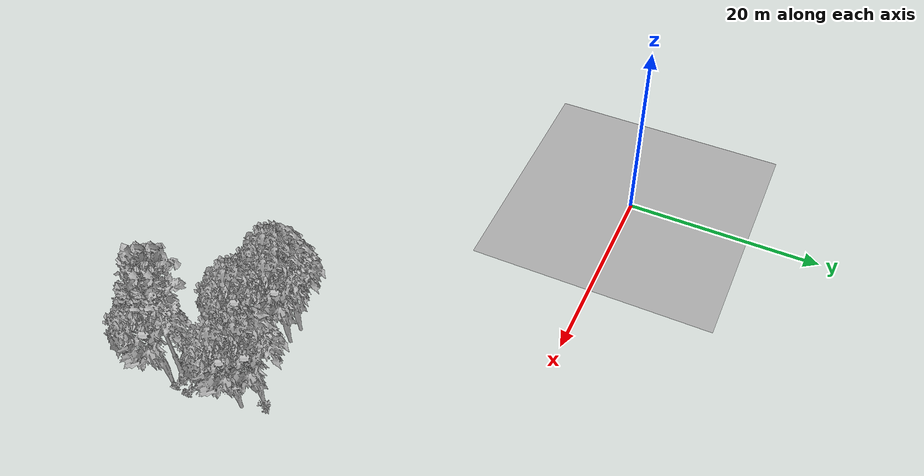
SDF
<sdf version="1.7">
 <world name="default">
  <model name="ground_plane">
   <static>1</static>
   <link name="link">
    <collision name="collision">
     <pose>-50 0 0 0 -0 0</pose>
     <geometry><plane><normal>0 0 1</normal><size>80 80</size></plane></geometry>
     <surface><contact><ode><min_depth>0.01</min_depth><max_vel>0</max_vel></ode></contact></surface>
    </collision>
    <visual name="grass">
     <cast_shadows>0</cast_shadows>
     <geometry>
      <mesh>
       <scale>0.46714285714285714 0.46714285714285714 0.1</scale>
       <uri>file://grass_plane/meshes/grass_plane.dae</uri>
      </mesh>
     </geometry>
    </visual>
   </link>
  </model>
  <model name="Tree 36">
   <static>1</static>
   <pose>37.666308855298524 -23.559179173925806 0 1.57079 -0 0</pose>
   <link name="link">
    <collision name="collision">
     <geometry><mesh><scale>3.5 5 3.5</scale><uri>model://tree_2/meshes/tree_2.obj</uri></mesh></geometry>
    </collision>
    <visual name="visual">
     <geometry><mesh><scale>3.5 5 3.5</scale><uri>model://tree_2/meshes/tree_2.obj</uri></mesh></geometry>
    </visual>
   </link>
  </model>
  <model name="Tree 43">
   <static>1</static>
   <pose>28.239215573967428 -23.323591105262437 0 1.57079 -0 0</pose>
   <link name="link">
    <collision name="collision">
     <geometry><mesh><scale>3.5 5 3.5</scale><uri>model://tree_2/meshes/tree_2.obj</uri></mesh></geometry>
    </collision>
    <visual name="visual">
     <geometry><mesh><scale>3.5 5 3.5</scale><uri>model://tree_2/meshes/tree_2.obj</uri></mesh></geometry>
    </visual>
   </link>
  </model>
  <model name="Tree 63">
   <static>1</static>
   <pose>27.386450528679518 -25.158228615375577 0 1.57079 -0 0</pose>
   <link name="link">
    <collision name="collision">
     <geometry><mesh><scale>3.5 5 3.5</scale><uri>model://tree_2/meshes/tree_2.obj</uri></mesh></geometry>
    </collision>
    <visual name="visual">
     <geometry><mesh><scale>3.5 5 3.5</scale><uri>model://tree_2/meshes/tree_2.obj</uri></mesh></geometry>
    </visual>
   </link>
  </model>
  <model name="Tree 125">
   <static>1</static>
   <pose>36.91223930541831 -30.705262825842166 0 1.57079 -0 0</pose>
   <link name="link">
    <collision name="collision">
     <geometry><mesh><scale>3.5 5 3.5</scale><uri>model://tree_9/meshes/tree_9.obj</uri></mesh></geometry>
    </collision>
    <visual name="visual">
     <geometry><mesh><scale>3.5 5 3.5</scale><uri>model://tree_9/meshes/tree_9.obj</uri></mesh></geometry>
    </visual>
   </link>
  </model>
  <model name="Tree 168">
   <static>1</static>
   <pose>36.48193099853195 -21.952247112098444 0 1.57079 -0 0</pose>
   <link name="link">
    <collision name="collision">
     <geometry><mesh><scale>3.5 5 3.5</scale><uri>model://tree_2/meshes/tree_2.obj</uri></mesh></geometry>
    </collision>
    <visual name="visual">
     <geometry><mesh><scale>3.5 5 3.5</scale><uri>model://tree_2/meshes/tree_2.obj</uri></mesh></geometry>
    </visual>
   </link>
  </model>
  <model name="Tree 338">
   <static>1</static>
   <pose>29.816859059504196 -23.475118878382688 0 1.57079 -0 0</pose>
   <link name="link">
    <collision name="collision">
     <geometry><mesh><scale>3.5 5 3.5</scale><uri>model://tree_2/meshes/tree_2.obj</uri></mesh></geometry>
    </collision>
    <visual name="visual">
     <geometry><mesh><scale>3.5 5 3.5</scale><uri>model://tree_2/meshes/tree_2.obj</uri></mesh></geometry>
    </visual>
   </link>
  </model>
  <model name="Tree 459">
   <static>1</static>
   <pose>36.405719890573806 -29.645964743357716 0 1.57079 -0 0</pose>
   <link name="link">
    <collision name="collision">
     <geometry><mesh><scale>3.5 5 3.5</scale><uri>model://tree_9/meshes/tree_9.obj</uri></mesh></geometry>
    </collision>
    <visual name="visual">
     <geometry><mesh><scale>3.5 5 3.5</scale><uri>model://tree_9/meshes/tree_9.obj</uri></mesh></geometry>
    </visual>
   </link>
  </model>
  <model name="Tree 539">
   <static>1</static>
   <pose>32.11772021168959 -25.976624155415298 0 1.57079 -0 0</pose>
   <link name="link">
    <collision name="collision">
     <geometry><mesh><scale>3.5 5 3.5</scale><uri>model://tree_2/meshes/tree_2.obj</uri></mesh></geometry>
    </collision>
    <visual name="visual">
     <geometry><mesh><scale>3.5 5 3.5</scale><uri>model://tree_2/meshes/tree_2.obj</uri></mesh></geometry>
    </visual>
   </link>
  </model>
  <model name="Tree 597">
   <static>1</static>
   <pose>37.996024297069596 -30.895406996577677 0 1.57079 -0 0</pose>
   <link name="link">
    <collision name="collision">
     <geometry><mesh><scale>3.5 5 3.5</scale><uri>model://tree_2/meshes/tree_2.obj</uri></mesh></geometry>
    </collision>
    <visual name="visual">
     <geometry><mesh><scale>3.5 5 3.5</scale><uri>model://tree_2/meshes/tree_2.obj</uri></mesh></geometry>
    </visual>
   </link>
  </model>
  <model name="Bush 32">
   <static>1</static>
   <pose>28.780552910293295 -32.06046240580304 0 1.57079 -0 0</pose>
   <link name="link">
    <collision name="collision">
     <geometry><mesh><scale>2 2 2</scale><uri>model://bush_2/meshes/bush_2.obj</uri></mesh></geometry>
     <surface><contact><collide_without_contact>false</collide_without_contact></contact></surface>
    </collision>
    <visual name="visual">
     <geometry><mesh><scale>2 2 2</scale><uri>model://bush_2/meshes/bush_2.obj</uri></mesh></geometry>
    </visual>
   </link>
  </model>
  <model name="Bush 43">
   <static>1</static>
   <pose>37.87689413199989 -28.01769384823798 0 1.57079 -0 0</pose>
   <link name="link">
    <collision name="collision">
     <geometry><mesh><scale>2 2 2</scale><uri>model://bush_4/meshes/bush_4.obj</uri></mesh></geometry>
     <surface><contact><collide_without_contact>false</collide_without_contact></contact></surface>
    </collision>
    <visual name="visual">
     <geometry><mesh><scale>2 2 2</scale><uri>model://bush_4/meshes/bush_4.obj</uri></mesh></geometry>
    </visual>
   </link>
  </model>
  <model name="Bush 73">
   <static>1</static>
   <pose>37.39687867545413 -20.933497452915706 0 1.57079 -0 0</pose>
   <link name="link">
    <collision name="collision">
     <geometry><mesh><scale>2 2 2</scale><uri>model://bush_5/meshes/bush_5.obj</uri></mesh></geometry>
     <surface><contact><collide_without_contact>false</collide_without_contact></contact></surface>
    </collision>
    <visual name="visual">
     <geometry><mesh><scale>2 2 2</scale><uri>model://bush_5/meshes/bush_5.obj</uri></mesh></geometry>
    </visual>
   </link>
  </model>
  <model name="Bush 87">
   <static>1</static>
   <pose>32.64179600604375 -28.27196648168597 0 1.57079 -0 0</pose>
   <link name="link">
    <collision name="collision">
     <geometry><mesh><scale>2 2 2</scale><uri>model://bush_1/meshes/bush_1.obj</uri></mesh></geometry>
     <surface><contact><collide_without_contact>false</collide_without_contact></contact></surface>
    </collision>
    <visual name="visual">
     <geometry><mesh><scale>2 2 2</scale><uri>model://bush_1/meshes/bush_1.obj</uri></mesh></geometry>
    </visual>
   </link>
  </model>
  <model name="Bush 127">
   <static>1</static>
   <pose>37.55768630789069 -29.976444650514146 0 1.57079 -0 0</pose>
   <link name="link">
    <collision name="collision">
     <geometry><mesh><scale>2 2 2</scale><uri>model://bush_2/meshes/bush_2.obj</uri></mesh></geometry>
     <surface><contact><collide_without_contact>false</collide_without_contact></contact></surface>
    </collision>
    <visual name="visual">
     <geometry><mesh><scale>2 2 2</scale><uri>model://bush_2/meshes/bush_2.obj</uri></mesh></geometry>
    </visual>
   </link>
  </model>
  <model name="Bush 252">
   <static>1</static>
   <pose>31.064177612803448 -30.875957506370835 0 1.57079 -0 0</pose>
   <link name="link">
    <collision name="collision">
     <geometry><mesh><scale>2 2 2</scale><uri>model://bush_2/meshes/bush_2.obj</uri></mesh></geometry>
     <surface><contact><collide_without_contact>false</collide_without_contact></contact></surface>
    </collision>
    <visual name="visual">
     <geometry><mesh><scale>2 2 2</scale><uri>model://bush_2/meshes/bush_2.obj</uri></mesh></geometry>
    </visual>
   </link>
  </model>
  <model name="Bush 299">
   <static>1</static>
   <pose>27.969296864602512 -27.913616972429843 0 1.57079 -0 0</pose>
   <link name="link">
    <collision name="collision">
     <geometry><mesh><scale>2 2 2</scale><uri>model://bush_2/meshes/bush_2.obj</uri></mesh></geometry>
     <surface><contact><collide_without_contact>false</collide_without_contact></contact></surface>
    </collision>
    <visual name="visual">
     <geometry><mesh><scale>2 2 2</scale><uri>model://bush_2/meshes/bush_2.obj</uri></mesh></geometry>
    </visual>
   </link>
  </model>
  <model name="Bush 413">
   <static>1</static>
   <pose>38.270402831747134 -30.232538446571766 0 1.57079 -0 0</pose>
   <link name="link">
    <collision name="collision">
     <geometry><mesh><scale>2 2 2</scale><uri>model://bush_2/meshes/bush_2.obj</uri></mesh></geometry>
     <surface><contact><collide_without_contact>false</collide_without_contact></contact></surface>
    </collision>
    <visual name="visual">
     <geometry><mesh><scale>2 2 2</scale><uri>model://bush_2/meshes/bush_2.obj</uri></mesh></geometry>
    </visual>
   </link>
  </model>
  <model name="Bush 417">
   <static>1</static>
   <pose>29.346825083202347 -26.911261233052972 0 1.57079 -0 0</pose>
   <link name="link">
    <collision name="collision">
     <geometry><mesh><scale>2 2 2</scale><uri>model://bush_5/meshes/bush_5.obj</uri></mesh></geometry>
     <surface><contact><collide_without_contact>false</collide_without_contact></contact></surface>
    </collision>
    <visual name="visual">
     <geometry><mesh><scale>2 2 2</scale><uri>model://bush_5/meshes/bush_5.obj</uri></mesh></geometry>
    </visual>
   </link>
  </model>
  <model name="Bush 496">
   <static>1</static>
   <pose>33.48160104711734 -29.640716271220988 0 1.57079 -0 0</pose>
   <link name="link">
    <collision name="collision">
     <geometry><mesh><scale>2 2 2</scale><uri>model://bush_2/meshes/bush_2.obj</uri></mesh></geometry>
     <surface><contact><collide_without_contact>false</collide_without_contact></contact></surface>
    </collision>
    <visual name="visual">
     <geometry><mesh><scale>2 2 2</scale><uri>model://bush_2/meshes/bush_2.obj</uri></mesh></geometry>
    </visual>
   </link>
  </model>
  <model name="Bush 598">
   <static>1</static>
   <pose>34.999334655750076 -30.00659153258769 0 1.57079 -0 0</pose>
   <link name="link">
    <collision name="collision">
     <geometry><mesh><scale>2 2 2</scale><uri>model://bush_2/meshes/bush_2.obj</uri></mesh></geometry>
     <surface><contact><collide_without_contact>false</collide_without_contact></contact></surface>
    </collision>
    <visual name="visual">
     <geometry><mesh><scale>2 2 2</scale><uri>model://bush_2/meshes/bush_2.obj</uri></mesh></geometry>
    </visual>
   </link>
  </model>
  <model name="Bush 607">
   <static>1</static>
   <pose>35.81726310804068 -26.474124653670053 0 1.57079 -0 0</pose>
   <link name="link">
    <collision name="collision">
     <geometry><mesh><scale>2 2 2</scale><uri>model://bush_2/meshes/bush_2.obj</uri></mesh></geometry>
     <surface><contact><collide_without_contact>false</collide_without_contact></contact></surface>
    </collision>
    <visual name="visual">
     <geometry><mesh><scale>2 2 2</scale><uri>model://bush_2/meshes/bush_2.obj</uri></mesh></geometry>
    </visual>
   </link>
  </model>
  <model name="Bush 623">
   <static>1</static>
   <pose>38.45164830325669 -28.830760330905214 0 1.57079 -0 0</pose>
   <link name="link">
    <collision name="collision">
     <geometry><mesh><scale>2 2 2</scale><uri>model://bush_2/meshes/bush_2.obj</uri></mesh></geometry>
     <surface><contact><collide_without_contact>false</collide_without_contact></contact></surface>
    </collision>
    <visual name="visual">
     <geometry><mesh><scale>2 2 2</scale><uri>model://bush_2/meshes/bush_2.obj</uri></mesh></geometry>
    </visual>
   </link>
  </model>
 </world>
</sdf>
